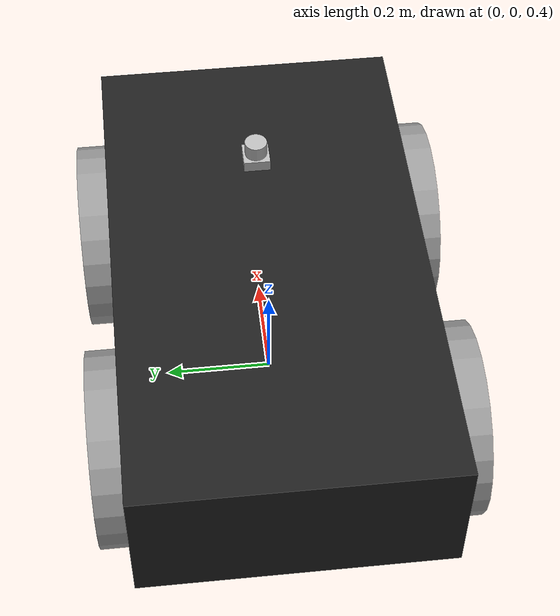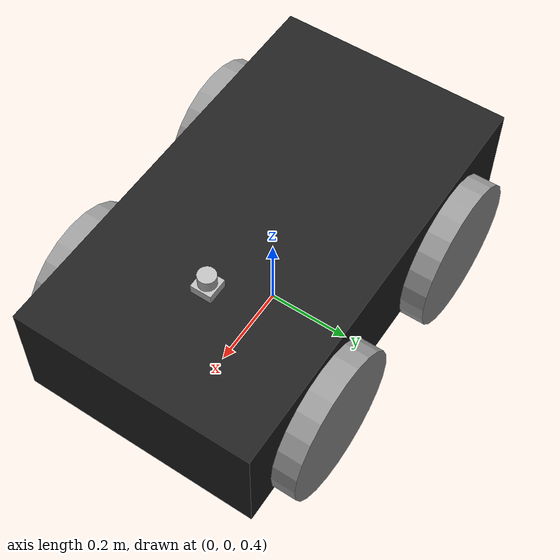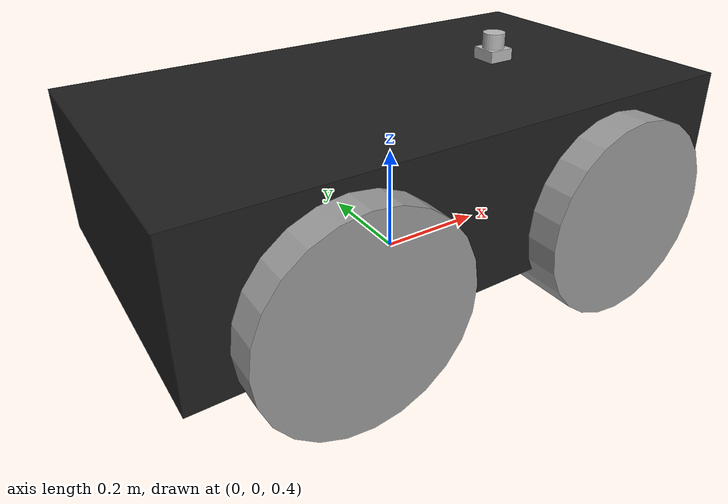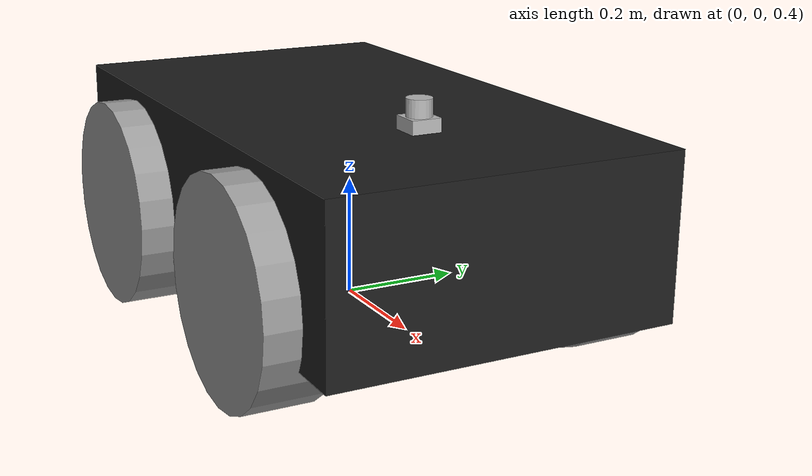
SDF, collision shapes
<?xml version="1.0" ?>
<sdf version="1.5">
  <model name="BasicBot">
    <pose>0 0 .5 0 0 0</pose>
    <!-- Main Chassis -->
    <link name="base_link">
      <!-- Physics -->
      <collision name="collision">
        <pose>0 0 0.1 0 0 0</pose>
        <geometry>
          <box>
            <size>1.0074 0.5709 0.2675</size>
          </box>
        </geometry>
      </collision>
      <inertial>
        <mass>33.855</mass>
        <pose>-0.0856132 -0.000839955 0.238145 0 0 0</pose>
        <inertia>
          <ixx>2.2343</ixx>
          <ixy>-0.023642</ixy>
          <ixz>0.275174</ixz>
          <iyy>3.42518</iyy>
          <iyz>0.00239624</iyz>
          <izz>2.1241</izz>
        </inertia>
      </inertial>
      <!-- Visual -->
      <!-- Base frame -->
      <visual name="base">
        <pose>0 0 0 0 0 0</pose>
        <geometry>
          <mesh>
            <uri>model://husky/meshes/base_link.stl</uri>
          </mesh>
        </geometry>
        <material>
          <script>
            <name>Gazebo/FlatBlack</name>
          </script>
        </material>
      </visual>
      <!-- Top Plate -->
      <visual name="top_plate">
        <pose>0 0 0 0 0 0</pose>
        <geometry>
          <mesh>
            <uri>model://husky/meshes/top_plate.stl</uri>
          </mesh>
        </geometry>
        <material>
          <script>
            <name>Gazebo/Yellow</name>
          </script>
        </material>
      </visual>
    </link>
    <!-- Back Left Wheel -->
    <link name="back_left_wheel">
      <pose>-0.256 0.285475 0.035 0 0 0</pose>
      <inertial>
        <mass>2.6357</mass>
        <pose>0 0 0 0 0 0</pose>
        <inertia>
          <ixx>0.0246688</ixx>
          <ixy>0</ixy>
          <ixz>0</ixz>
          <iyy>0.0246688</iyy>
          <iyz>0</iyz>
          <izz>0.0441058</izz>
        </inertia>
      </inertial>
      <collision name="back_left_wheel_collision">
        <pose>0 0 0 -1.5707 0 0</pose>
        <geometry>
          <cylinder>
            <radius>0.17775</radius>
            <length>0.1143</length>
          </cylinder>
        </geometry>
        <surface>
          <friction>
            <ode>
              <mu>100000.0</mu>
              <mu2>100000.0</mu2>
              <slip1>0.0</slip1>
              <slip2>0.0</slip2>
            </ode>
          </friction>
        </surface>
      </collision>
      <visual name="back_left_wheel">
        <pose>0 0 0 -3.14159 0 0</pose>
        <geometry>
          <mesh>
            <uri>model://husky/meshes/wheel.stl</uri>
          </mesh>
        </geometry>
        <material>
          <script>
            <name>Gazebo/Grey</name>
          </script>
        </material>
      </visual>
    </link>
    <joint name="back_left_joint" type="revolute">
      <parent>base_link</parent>
      <child>back_left_wheel</child>
      <axis>
        <xyz>0 1 0</xyz>
        <use_parent_model_frame>true</use_parent_model_frame>
      </axis>
      <physics>
        <ode>
          <limit>
            <cfm>0.000000</cfm>
            <erp>0.900000</erp>
          </limit>
        </ode>
      </physics>
    </joint>
    <!-- Back Right Wheel -->
    <link name="back_right_wheel">
      <pose>-0.256 -0.285475 0.035 0 0 0</pose>
      <inertial>
        <mass>2.6357</mass>
        <pose>0 0 0 0 0 0</pose>
        <inertia>
          <ixx>0.0246688</ixx>
          <ixy>0</ixy>
          <ixz>0</ixz>
          <iyy>0.0246688</iyy>
          <iyz>0</iyz>
          <izz>0.0441058</izz>
        </inertia>
      </inertial>
      <collision name="back_right_wheel_collision">
        <pose>0 0 0 -1.5707 0 0</pose>
        <geometry>
          <cylinder>
            <radius>0.17775</radius>
            <length>0.1143</length>
          </cylinder>
        </geometry>
        <surface>
          <friction>
            <ode>
              <mu>100000.0</mu>
              <mu2>100000.0</mu2>
              <slip1>0.0</slip1>
              <slip2>0.0</slip2>
            </ode>
          </friction>
        </surface>
      </collision>
      <visual name="back_right_wheel">
        <pose>0 0 0 -3.14159 0 0</pose>
        <geometry>
          <mesh>
            <uri>model://husky/meshes/wheel.stl</uri>
          </mesh>
        </geometry>
        <material>
          <script>
            <name>Gazebo/Grey</name>
          </script>
        </material>
      </visual>
    </link>
    <joint name="back_right_joint" type="revolute">
      <parent>base_link</parent>
      <child>back_right_wheel</child>
      <axis>
        <xyz>0 1 0</xyz>
        <use_parent_model_frame>true</use_parent_model_frame>
      </axis>
      <physics>
        <ode>
          <limit>
            <cfm>0.000000</cfm>
            <erp>0.900000</erp>
          </limit>
        </ode>
      </physics>
    </joint>
    <!-- Front Left Wheel -->
    <link name="front_left_wheel">
      <pose>0.256 0.285475 0.035 0 0 0</pose>
      <inertial>
        <mass>2.6357</mass>
        <pose>0 0 0 0 0 0</pose>
        <inertia>
          <ixx>0.0246688</ixx>
          <ixy>0</ixy>
          <ixz>0</ixz>
          <iyy>0.0246688</iyy>
          <iyz>0</iyz>
          <izz>0.0441058</izz>
        </inertia>
      </inertial>
      <collision name="front_left_wheel_collision">
        <pose>0 0 0 -1.5707 0 0</pose>
        <geometry>
          <cylinder>
            <radius>0.17775</radius>
            <length>0.1143</length>
          </cylinder>
        </geometry>
        <surface>
          <friction>
            <ode>
              <mu>100000.0</mu>
              <mu2>100000.0</mu2>
              <slip1>0.0</slip1>
              <slip2>0.0</slip2>
            </ode>
          </friction>
        </surface>
      </collision>
      <visual name="front_left_wheel">
        <pose>0 0 0 -3.14159 0 0</pose>
        <geometry>
          <mesh>
            <uri>model://husky/meshes/wheel.stl</uri>
          </mesh>
        </geometry>
        <material>
          <script>
            <name>Gazebo/Grey</name>
          </script>
        </material>
      </visual>
    </link>
    <joint name="front_left_joint" type="revolute">
      <parent>base_link</parent>
      <child>front_left_wheel</child>
      <axis>
        <xyz>0 1 0</xyz>
        <use_parent_model_frame>true</use_parent_model_frame>
      </axis>
      <physics>
        <ode>
          <limit>
            <cfm>0.000000</cfm>
            <erp>0.900000</erp>
          </limit>
        </ode>
      </physics>
    </joint>
    <!-- Front Right Wheel -->
    <link name="front_right_wheel">
      <pose>0.256 -0.285475 0.035 0 0 0</pose>
      <inertial>
        <mass>2.6357</mass>
        <pose>0 0 0 0 0 0</pose>
        <inertia>
          <ixx>0.0246688</ixx>
          <ixy>0</ixy>
          <ixz>0</ixz>
          <iyy>0.0246688</iyy>
          <iyz>0</iyz>
          <izz>0.0441058</izz>
        </inertia>
      </inertial>
      <collision name="front_right_wheel_collision">
        <pose>0 0 0 -1.5707 0 0</pose>
        <geometry>
          <cylinder>
            <radius>0.17775</radius>
            <length>0.1143</length>
          </cylinder>
        </geometry>
        <surface>
          <friction>
            <ode>
              <mu>100000.0</mu>
              <mu2>100000.0</mu2>
              <slip1>0.0</slip1>
              <slip2>0.0</slip2>
            </ode>
          </friction>
        </surface>
      </collision>
      <visual name="front_right_wheel">
        <pose>0 0 0 -3.14159 0 0</pose>
        <geometry>
          <mesh>
            <uri>model://husky/meshes/wheel.stl</uri>
          </mesh>
        </geometry>
        <material>
          <script>
            <name>Gazebo/Grey</name>
          </script>
        </material>
      </visual>
    </link>
    <joint name="front_right_joint" type="revolute">
      <parent>base_link</parent>
      <child>front_right_wheel</child>
      <axis>
        <xyz>0 1 0</xyz>
        <use_parent_model_frame>true</use_parent_model_frame>
      </axis>
      <physics>
        <ode>
          <limit>
            <cfm>0.000000</cfm>
            <erp>0.900000</erp>
          </limit>
        </ode>
      </physics>
    </joint>

    <include>
      <uri>model://hokuyo</uri>
      <pose>0.235 0 0.25 0 0 0</pose>
    </include>
    <joint name="laser_joint" type="revolute">
      <child>hokuyo::link</child>
      <parent>base_link</parent>
      <axis>
        <xyz>0 0 1</xyz>
        <use_parent_model_frame>true</use_parent_model_frame>
      </axis>
      <physics>
        <ode>
          <limit>
            <cfm>0.000000</cfm>
            <erp>0.900000</erp>
          </limit>
        </ode>
      </physics>
    </joint>

    <include>
      <uri>model://camera</uri>
      <pose>0.315 -0.05 0.0275 0 0 0</pose>
    </include>
    <joint name="camera_joint" type="fixed">
      <child>camera::link</child>
      <parent>base_link</parent>
      <axis>
        <use_parent_model_frame>true</use_parent_model_frame>
      </axis>
    </joint>

    <plugin name="husky_diff_controller" filename="libhusky_gazebo_plugins.so">
      <alwaysOn>true</alwaysOn>
      <updateRate>100.0</updateRate>
      <backLeftJoint>back_left_joint</backLeftJoint>
      <backRightJoint>back_right_joint</backRightJoint>
      <frontLeftJoint>front_left_joint</frontLeftJoint>
      <frontRightJoint>front_right_joint</frontRightJoint>
      <wheelSeparation>0.5709</wheelSeparation>
      <wheelDiameter>0.3555</wheelDiameter>
      <torque>35</torque>
    </plugin>

  </model>
</sdf>

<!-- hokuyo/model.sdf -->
<sdf version="1.5">
  <model name="hokuyo">
    <pose>0 0 0.035 0 0 0</pose>
    <link name="link">
      <inertial>
        <mass>0.1</mass>
      </inertial>
      <visual name="visual">
        <geometry>
          <mesh>
            <uri>model://../model_source/models/hokuyo/meshes/hokuyo.dae</uri>
          </mesh>
        </geometry>
      </visual>
      <collision name="collision-base">
        <pose>0 0 -0.0145 0 0 0</pose>
        <geometry>
          <box>
            <size>0.05 0.05 0.041</size>
          </box>
        </geometry>
      </collision>
      <collision name="collision-top">
        <pose>0 0 0.0205 0 0 0</pose>
        <geometry>
          <cylinder>
            <radius>0.021</radius>
            <length>0.029</length>
          </cylinder>
        </geometry>
      </collision>
      <sensor name="laser" type="ray">
        <pose>0.01 0 0.0175 0 -0 0</pose>
        <ray>
          <scan>
            <horizontal>
              <samples>640</samples>
              <resolution>1</resolution>
              <min_angle>-2.26889</min_angle>
              <max_angle>2.268899</max_angle>
            </horizontal>
          </scan>
          <range>
            <min>0.08</min>
            <max>10</max>
            <resolution>0.01</resolution>
          </range>
        </ray>
        <plugin name="laser" filename="libRayPlugin.so" />
        <always_on>1</always_on>
        <update_rate>30</update_rate>
        <visualize>true</visualize>
      </sensor>
    </link>
  </model>
</sdf>

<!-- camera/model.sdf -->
<sdf version="1.5">
  <model name="camera">
    <pose>0 0 0.05 0 0 0</pose>
    <link name="link">
      <inertial>
        <mass>0.1</mass>
        <inertia>
          <ixx>0.000166667</ixx>
          <iyy>0.000166667</iyy>
          <izz>0.000166667</izz>
        </inertia>
      </inertial>
      <collision name="collision">
        <geometry>
          <box>
            <size>0.1 0.1 0.1</size>
          </box>
        </geometry>
      </collision>
      <visual name="visual">
        <geometry>
          <box>
            <size>0.1 0.1 0.1</size>
          </box>
        </geometry>
      </visual>
      <sensor name="camera" type="camera">
        <camera>
          <horizontal_fov>1.047</horizontal_fov>
          <image>
            <width>320</width>
            <height>240</height>
          </image>
          <clip>
            <near>0.1</near>
            <far>100</far>
          </clip>
        </camera>
        <always_on>1</always_on>
        <update_rate>30</update_rate>
        <visualize>true</visualize>
      </sensor>
    </link>
  </model>
</sdf>
